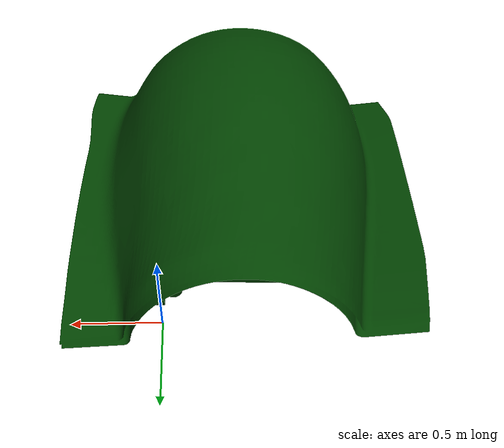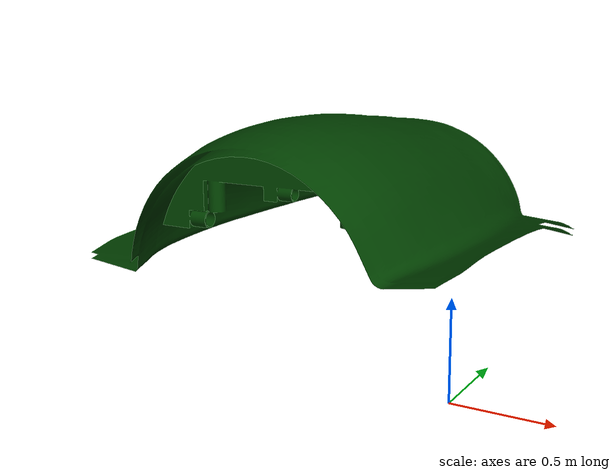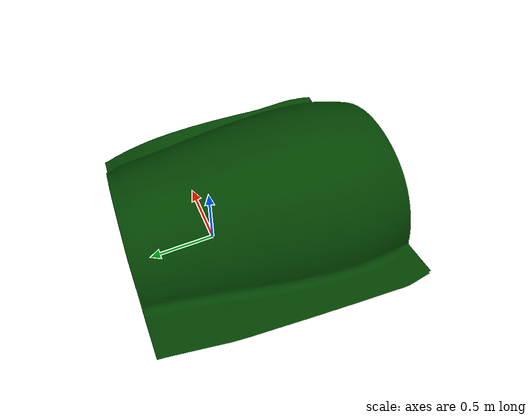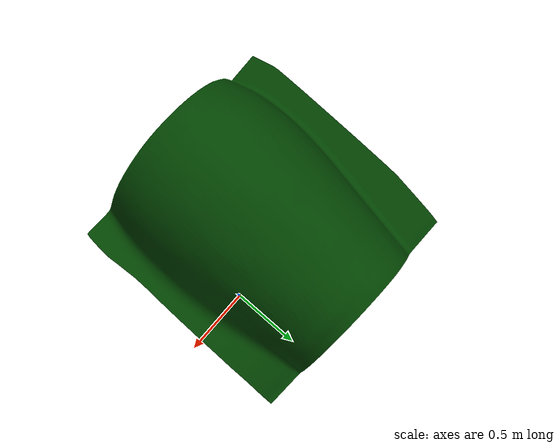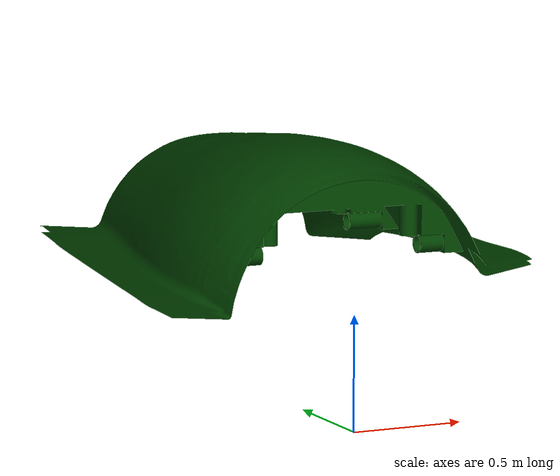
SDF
<sdf version='1.6'>
  <model name='part1_loader'>
    <link name='part_link'>
      <pose frame=''>0 0 0 -1.571 0 0</pose>
      <inertial>
        <pose frame=''>0 0 0 0 -0 0</pose>
        <mass>0.1</mass>
        <inertia>
          <ixx>0.03</ixx>
          <ixy>0</ixy>
          <ixz>0</ixz>
          <iyy>0.03</iyy>
          <iyz>0</iyz>
          <izz>0.03</izz>
        </inertia>
      </inertial>
      <collision name='part_link_collision'>
        <pose frame=''>0 0 -0.1168 1.571 -0 0</pose>
        <geometry>
          <mesh>
            <scale>1 1 1</scale>
            <uri>model://crs_support/meshes/Parts/collision/part_from_mockup.stl</uri>
          </mesh>
        </geometry>
      </collision>
      <visual name='part_link_visual'>
        <pose frame=''>0 0 -0.1168 1.571 -0 0</pose>
        <geometry>
          <mesh>
            <scale>1 1 1</scale>
            <uri>model://crs_support/meshes/Parts/visual/part_from_mockup.stl</uri>
          </mesh>
        </geometry>
        <material>
          <ambient>0 0.25 0 1.0</ambient>
          <diffuse>0 0.25 0 1.0</diffuse>
          <specular>0 0.25 0 1.0</specular>
          <emissive>0 0.25 0 1.0</emissive>
        </material>
      </visual>
    </link>
    <joint name='world_to_part' type='fixed'>
      <child>part_link</child>
      <parent>world</parent>
    </joint>
  </model>
</sdf>
